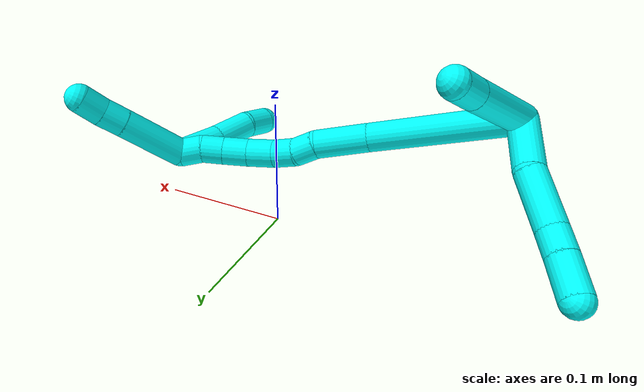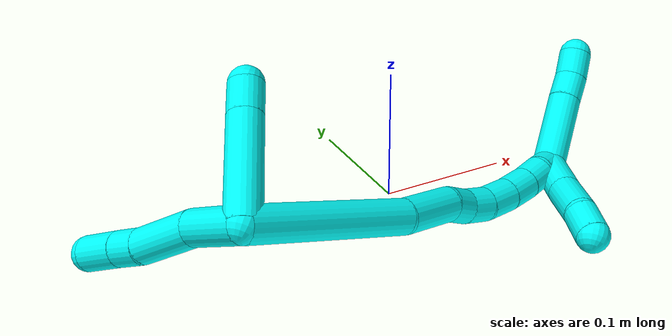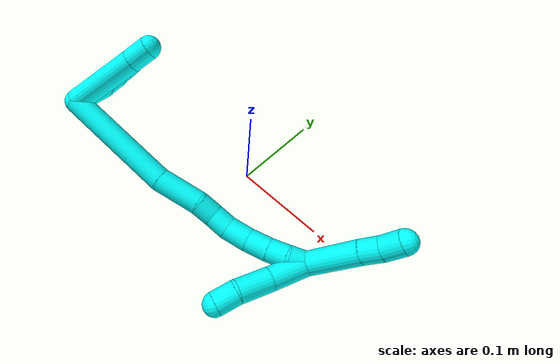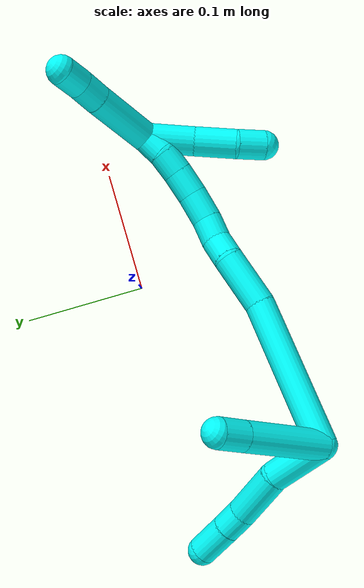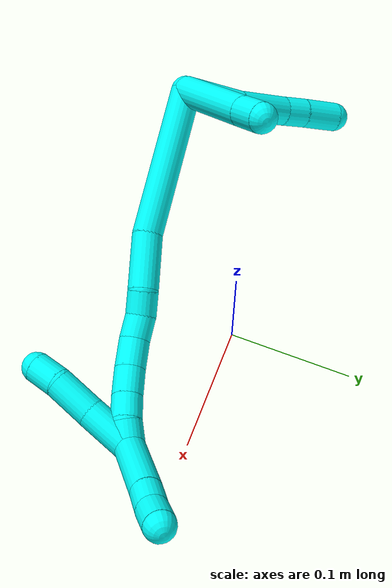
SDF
<sdf version="1.7">
 <world name="default">
  <model name="photoneo_s_sensor">
   <static>1</static>
   <pose>0 0 2 1.57079 1.57079 3.14159</pose>
   <link name="link">
    <inertial><mass>0.1</mass></inertial>
    <sensor name="sensor" type="depth">
     <update_rate>30</update_rate>
     <camera>
      <horizontal_fov>1.22</horizontal_fov>
      <image><width>1920</width><height>1200</height><format>B8G8R8</format></image>
      <clip><near>0.1</near><far>4</far></clip>
      <depth_camera><output>points</output></depth_camera>
     </camera>
     <plugin name="camera_plugin" filename="libgazebo_ros_depth_camera.so">
      <baseline>0.2</baseline>
      <alwaysOn>1</alwaysOn>
      <updateRate>0.0</updateRate>
      <cameraName>camera_ir</cameraName>
      <imageTopicName>/camera/color/image_raw</imageTopicName>
      <cameraInfoTopicName>/camera/color/camera_info</cameraInfoTopicName>
      <depthImageTopicName>/camera/depth/image_raw</depthImageTopicName>
      <depthImageCameraInfoTopicName>/camera/depth/camera_info</depthImageCameraInfoTopicName>
      <pointCloudTopicName>/camera/depth/points</pointCloudTopicName>
      <frameName>fr_optical</frameName>
      <pointCloudCutoff>0.1</pointCloudCutoff>
      <pointCloudCutoffMax>2.0</pointCloudCutoffMax>
      <distortionK1>0</distortionK1>
      <distortionK2>0</distortionK2>
      <distortionK3>0</distortionK3>
      <distortionT1>0</distortionT1>
      <distortionT2>0</distortionT2>
      <CxPrime>0</CxPrime>
      <Cx>0</Cx>
      <Cy>0</Cy>
      <focalLength>0</focalLength>
      <hackBaseline>0</hackBaseline>
     </plugin>
    </sensor>
   </link>
  </model>
  <model name="3">
   <static>0</static>
   <link name="3">
    <collision name="collision-cylinder-e_1_2_8">
     <pose>-0.008526 0.023071 0.001177 -1.51981 -0.353561 0.336315</pose>
     <geometry><cylinder><radius>0.0125</radius><length>0.049248</length></cylinder></geometry>
     <surface>
      <friction><ode><mu>1.16</mu><mu2>1.16</mu2><slip1>0</slip1><slip2>0</slip2></ode></friction>
      <contact><ode><kp>1e+06</kp><kd>1</kd><max_vel>0</max_vel><min_depth>0.001</min_depth></ode></contact>
     </surface>
    </collision>
    <visual name="visual-cylinder-e_1_2_8">
     <pose>-0.008526 0.023071 0.001177 -1.51981 -0.353561 0.336315</pose>
     <geometry><cylinder><radius>0.0125</radius><length>0.049248</length></cylinder></geometry>
     <material><ambient>0.003922 1 0.996078 1</ambient></material>
    </visual>
    <collision name="collision-cylinder-e_2_8_9">
     <pose>-0.026276 0.067347 -0.002959 -1.81634 -0.399303 0.507446</pose>
     <geometry><cylinder><radius>0.0125</radius><length>0.047456</length></cylinder></geometry>
     <surface>
      <friction><ode><mu>1.16</mu><mu2>1.16</mu2><slip1>0</slip1><slip2>0</slip2></ode></friction>
      <contact><ode><kp>1e+06</kp><kd>1</kd><max_vel>0</max_vel><min_depth>0.001</min_depth></ode></contact>
     </surface>
    </collision>
    <visual name="visual-cylinder-e_2_8_9">
     <pose>-0.026276 0.067347 -0.002959 -1.81634 -0.399303 0.507446</pose>
     <geometry><cylinder><radius>0.0125</radius><length>0.047456</length></cylinder></geometry>
     <material><ambient>0.003922 1 0.996078 1</ambient></material>
    </visual>
    <collision name="collision-cylinder-e_3_9_10">
     <pose>-0.040375 0.097964 -0.009121 -1.66066 -0.476204 0.519135</pose>
     <geometry><cylinder><radius>0.0125</radius><length>0.021266</length></cylinder></geometry>
     <surface>
      <friction><ode><mu>1.16</mu><mu2>1.16</mu2><slip1>0</slip1><slip2>0</slip2></ode></friction>
      <contact><ode><kp>1e+06</kp><kd>1</kd><max_vel>0</max_vel><min_depth>0.001</min_depth></ode></contact>
     </surface>
    </collision>
    <visual name="visual-cylinder-e_3_9_10">
     <pose>-0.040375 0.097964 -0.009121 -1.66066 -0.476204 0.519135</pose>
     <geometry><cylinder><radius>0.0125</radius><length>0.021266</length></cylinder></geometry>
     <material><ambient>0.003922 1 0.996078 1</ambient></material>
    </visual>
    <collision name="collision-cylinder-e_4_10_6">
     <pose>-0.052141 0.121769 -0.011323 -1.66461 -0.444818 0.486995</pose>
     <geometry><cylinder><radius>0.0125</radius><length>0.032031</length></cylinder></geometry>
     <surface>
      <friction><ode><mu>1.16</mu><mu2>1.16</mu2><slip1>0</slip1><slip2>0</slip2></ode></friction>
      <contact><ode><kp>1e+06</kp><kd>1</kd><max_vel>0</max_vel><min_depth>0.001</min_depth></ode></contact>
     </surface>
    </collision>
    <visual name="visual-cylinder-e_4_10_6">
     <pose>-0.052141 0.121769 -0.011323 -1.66461 -0.444818 0.486995</pose>
     <geometry><cylinder><radius>0.0125</radius><length>0.032031</length></cylinder></geometry>
     <material><ambient>0.003922 1 0.996078 1</ambient></material>
    </visual>
    <collision name="collision-cylinder-e_1_2_11">
     <pose>-0.009008 0.007621 0.036176 -0.207623 -0.23899 0.025017</pose>
     <geometry><cylinder><radius>0.0125</radius><length>0.076102</length></cylinder></geometry>
     <surface>
      <friction><ode><mu>1.16</mu><mu2>1.16</mu2><slip1>0</slip1><slip2>0</slip2></ode></friction>
      <contact><ode><kp>1e+06</kp><kd>1</kd><max_vel>0</max_vel><min_depth>0.001</min_depth></ode></contact>
     </surface>
    </collision>
    <visual name="visual-cylinder-e_1_2_11">
     <pose>-0.009008 0.007621 0.036176 -0.207623 -0.23899 0.025017</pose>
     <geometry><cylinder><radius>0.0125</radius><length>0.076102</length></cylinder></geometry>
     <material><ambient>0.003922 1 0.996078 1</ambient></material>
    </visual>
    <collision name="collision-cylinder-e_2_11_5">
     <pose>-0.020875 0.017305 0.083768 -0.178808 -0.241692 0.021771</pose>
     <geometry><cylinder><radius>0.0125</radius><length>0.023898</length></cylinder></geometry>
     <surface>
      <friction><ode><mu>1.16</mu><mu2>1.16</mu2><slip1>0</slip1><slip2>0</slip2></ode></friction>
      <contact><ode><kp>1e+06</kp><kd>1</kd><max_vel>0</max_vel><min_depth>0.001</min_depth></ode></contact>
     </surface>
    </collision>
    <visual name="visual-cylinder-e_2_11_5">
     <pose>-0.020875 0.017305 0.083768 -0.178808 -0.241692 0.021771</pose>
     <geometry><cylinder><radius>0.0125</radius><length>0.023898</length></cylinder></geometry>
     <material><ambient>0.003922 1 0.996078 1</ambient></material>
    </visual>
    <collision name="collision-cylinder-e_1_2_12">
     <pose>0.053872 0.011202 0.029936 -0.35805 1.0353 -0.205372</pose>
     <geometry><cylinder><radius>0.0125</radius><length>0.125282</length></cylinder></geometry>
     <surface>
      <friction><ode><mu>1.16</mu><mu2>1.16</mu2><slip1>0</slip1><slip2>0</slip2></ode></friction>
      <contact><ode><kp>1e+06</kp><kd>1</kd><max_vel>0</max_vel><min_depth>0.001</min_depth></ode></contact>
     </surface>
    </collision>
    <visual name="visual-cylinder-e_1_2_12">
     <pose>0.053872 0.011202 0.029936 -0.35805 1.0353 -0.205372</pose>
     <geometry><cylinder><radius>0.0125</radius><length>0.125282</length></cylinder></geometry>
     <material><ambient>0.003922 1 0.996078 1</ambient></material>
    </visual>
    <collision name="collision-cylinder-e_2_12_13">
     <pose>0.125032 0.028827 0.074276 -0.419508 0.831258 -0.187359</pose>
     <geometry><cylinder><radius>0.0125</radius><length>0.046801</length></cylinder></geometry>
     <surface>
      <friction><ode><mu>1.16</mu><mu2>1.16</mu2><slip1>0</slip1><slip2>0</slip2></ode></friction>
      <contact><ode><kp>1e+06</kp><kd>1</kd><max_vel>0</max_vel><min_depth>0.001</min_depth></ode></contact>
     </surface>
    </collision>
    <visual name="visual-cylinder-e_2_12_13">
     <pose>0.125032 0.028827 0.074276 -0.419508 0.831258 -0.187359</pose>
     <geometry><cylinder><radius>0.0125</radius><length>0.046801</length></cylinder></geometry>
     <material><ambient>0.003922 1 0.996078 1</ambient></material>
    </visual>
    <collision name="collision-cylinder-e_3_13_14">
     <pose>0.150617 0.039282 0.092661 -0.791697 0.971603 -0.434357</pose>
     <geometry><cylinder><radius>0.0125</radius><length>0.020096</length></cylinder></geometry>
     <surface>
      <friction><ode><mu>1.16</mu><mu2>1.16</mu2><slip1>0</slip1><slip2>0</slip2></ode></friction>
      <contact><ode><kp>1e+06</kp><kd>1</kd><max_vel>0</max_vel><min_depth>0.001</min_depth></ode></contact>
     </surface>
    </collision>
    <visual name="visual-cylinder-e_3_13_14">
     <pose>0.150617 0.039282 0.092661 -0.791697 0.971603 -0.434357</pose>
     <geometry><cylinder><radius>0.0125</radius><length>0.020096</length></cylinder></geometry>
     <material><ambient>0.003922 1 0.996078 1</ambient></material>
    </visual>
    <collision name="collision-cylinder-e_4_14_15">
     <pose>0.167563 0.044991 0.10199 -0.303831 0.99578 -0.166052</pose>
     <geometry><cylinder><radius>0.0125</radius><length>0.02061</length></cylinder></geometry>
     <surface>
      <friction><ode><mu>1.16</mu><mu2>1.16</mu2><slip1>0</slip1><slip2>0</slip2></ode></friction>
      <contact><ode><kp>1e+06</kp><kd>1</kd><max_vel>0</max_vel><min_depth>0.001</min_depth></ode></contact>
     </surface>
    </collision>
    <visual name="visual-cylinder-e_4_14_15">
     <pose>0.167563 0.044991 0.10199 -0.303831 0.99578 -0.166052</pose>
     <geometry><cylinder><radius>0.0125</radius><length>0.02061</length></cylinder></geometry>
     <material><ambient>0.003922 1 0.996078 1</ambient></material>
    </visual>
    <collision name="collision-cylinder-e_5_15_16">
     <pose>0.184874 0.048297 0.115718 -0.191985 0.792778 -0.080558</pose>
     <geometry><cylinder><radius>0.0125</radius><length>0.024326</length></cylinder></geometry>
     <surface>
      <friction><ode><mu>1.16</mu><mu2>1.16</mu2><slip1>0</slip1><slip2>0</slip2></ode></friction>
      <contact><ode><kp>1e+06</kp><kd>1</kd><max_vel>0</max_vel><min_depth>0.001</min_depth></ode></contact>
     </surface>
    </collision>
    <visual name="visual-cylinder-e_5_15_16">
     <pose>0.184874 0.048297 0.115718 -0.191985 0.792778 -0.080558</pose>
     <geometry><cylinder><radius>0.0125</radius><length>0.024326</length></cylinder></geometry>
     <material><ambient>0.003922 1 0.996078 1</ambient></material>
    </visual>
    <collision name="collision-cylinder-e_6_16_17">
     <pose>0.200846 0.051408 0.132706 -0.170564 0.696678 -0.06207</pose>
     <geometry><cylinder><radius>0.0125</radius><length>0.022777</length></cylinder></geometry>
     <surface>
      <friction><ode><mu>1.16</mu><mu2>1.16</mu2><slip1>0</slip1><slip2>0</slip2></ode></friction>
      <contact><ode><kp>1e+06</kp><kd>1</kd><max_vel>0</max_vel><min_depth>0.001</min_depth></ode></contact>
     </surface>
    </collision>
    <visual name="visual-cylinder-e_6_16_17">
     <pose>0.200846 0.051408 0.132706 -0.170564 0.696678 -0.06207</pose>
     <geometry><cylinder><radius>0.0125</radius><length>0.022777</length></cylinder></geometry>
     <material><ambient>0.003922 1 0.996078 1</ambient></material>
    </visual>
    <collision name="collision-cylinder-e_7_17_18">
     <pose>0.213894 0.054304 0.149387 -0.173266 0.610978 -0.054765</pose>
     <geometry><cylinder><radius>0.0125</radius><length>0.020013</length></cylinder></geometry>
     <surface>
      <friction><ode><mu>1.16</mu><mu2>1.16</mu2><slip1>0</slip1><slip2>0</slip2></ode></friction>
      <contact><ode><kp>1e+06</kp><kd>1</kd><max_vel>0</max_vel><min_depth>0.001</min_depth></ode></contact>
     </surface>
    </collision>
    <visual name="visual-cylinder-e_7_17_18">
     <pose>0.213894 0.054304 0.149387 -0.173266 0.610978 -0.054765</pose>
     <geometry><cylinder><radius>0.0125</radius><length>0.020013</length></cylinder></geometry>
     <material><ambient>0.003922 1 0.996078 1</ambient></material>
    </visual>
    <collision name="collision-cylinder-e_8_18_1">
     <pose>0.225566 0.059656 0.16455 -0.507069 0.631451 -0.168876</pose>
     <geometry><cylinder><radius>0.0125</radius><length>0.020096</length></cylinder></geometry>
     <surface>
      <friction><ode><mu>1.16</mu><mu2>1.16</mu2><slip1>0</slip1><slip2>0</slip2></ode></friction>
      <contact><ode><kp>1e+06</kp><kd>1</kd><max_vel>0</max_vel><min_depth>0.001</min_depth></ode></contact>
     </surface>
    </collision>
    <visual name="visual-cylinder-e_8_18_1">
     <pose>0.225566 0.059656 0.16455 -0.507069 0.631451 -0.168876</pose>
     <geometry><cylinder><radius>0.0125</radius><length>0.020096</length></cylinder></geometry>
     <material><ambient>0.003922 1 0.996078 1</ambient></material>
    </visual>
    <collision name="collision-cylinder-e_1_1_19">
     <pose>0.230913 0.061346 0.200702 0.077185 -0.020023 -0.000773</pose>
     <geometry><cylinder><radius>0.0125</radius><length>0.058308</length></cylinder></geometry>
     <surface>
      <friction><ode><mu>1.16</mu><mu2>1.16</mu2><slip1>0</slip1><slip2>0</slip2></ode></friction>
      <contact><ode><kp>1e+06</kp><kd>1</kd><max_vel>0</max_vel><min_depth>0.001</min_depth></ode></contact>
     </surface>
    </collision>
    <visual name="visual-cylinder-e_1_1_19">
     <pose>0.230913 0.061346 0.200702 0.077185 -0.020023 -0.000773</pose>
     <geometry><cylinder><radius>0.0125</radius><length>0.058308</length></cylinder></geometry>
     <material><ambient>0.003922 1 0.996078 1</ambient></material>
    </visual>
    <collision name="collision-cylinder-e_2_19_20">
     <pose>0.230584 0.058298 0.239939 0.07857 0.024901 0.000979</pose>
     <geometry><cylinder><radius>0.0125</radius><length>0.020421</length></cylinder></geometry>
     <surface>
      <friction><ode><mu>1.16</mu><mu2>1.16</mu2><slip1>0</slip1><slip2>0</slip2></ode></friction>
      <contact><ode><kp>1e+06</kp><kd>1</kd><max_vel>0</max_vel><min_depth>0.001</min_depth></ode></contact>
     </surface>
    </collision>
    <visual name="visual-cylinder-e_2_19_20">
     <pose>0.230584 0.058298 0.239939 0.07857 0.024901 0.000979</pose>
     <geometry><cylinder><radius>0.0125</radius><length>0.020421</length></cylinder></geometry>
     <material><ambient>0.003922 1 0.996078 1</ambient></material>
    </visual>
    <collision name="collision-cylinder-e_3_20_4">
     <pose>0.229744 0.056177 0.260611 0.12504 -0.103092 -0.006459</pose>
     <geometry><cylinder><radius>0.0125</radius><length>0.021271</length></cylinder></geometry>
     <surface>
      <friction><ode><mu>1.16</mu><mu2>1.16</mu2><slip1>0</slip1><slip2>0</slip2></ode></friction>
      <contact><ode><kp>1e+06</kp><kd>1</kd><max_vel>0</max_vel><min_depth>0.001</min_depth></ode></contact>
     </surface>
    </collision>
    <visual name="visual-cylinder-e_3_20_4">
     <pose>0.229744 0.056177 0.260611 0.12504 -0.103092 -0.006459</pose>
     <geometry><cylinder><radius>0.0125</radius><length>0.021271</length></cylinder></geometry>
     <material><ambient>0.003922 1 0.996078 1</ambient></material>
    </visual>
    <collision name="collision-cylinder-e_1_1_21">
     <pose>0.232639 0.050063 0.156418 2.41493 0.055991 0.147036</pose>
     <geometry><cylinder><radius>0.0125</radius><length>0.040798</length></cylinder></geometry>
     <surface>
      <friction><ode><mu>1.16</mu><mu2>1.16</mu2><slip1>0</slip1><slip2>0</slip2></ode></friction>
      <contact><ode><kp>1e+06</kp><kd>1</kd><max_vel>0</max_vel><min_depth>0.001</min_depth></ode></contact>
     </surface>
    </collision>
    <visual name="visual-cylinder-e_1_1_21">
     <pose>0.232639 0.050063 0.156418 2.41493 0.055991 0.147036</pose>
     <geometry><cylinder><radius>0.0125</radius><length>0.040798</length></cylinder></geometry>
     <material><ambient>0.003922 1 0.996078 1</ambient></material>
    </visual>
    <collision name="collision-cylinder-e_2_21_22">
     <pose>0.233985 0.023839 0.128725 2.34737 0.01151 0.027443</pose>
     <geometry><cylinder><radius>0.0125</radius><length>0.035589</length></cylinder></geometry>
     <surface>
      <friction><ode><mu>1.16</mu><mu2>1.16</mu2><slip1>0</slip1><slip2>0</slip2></ode></friction>
      <contact><ode><kp>1e+06</kp><kd>1</kd><max_vel>0</max_vel><min_depth>0.001</min_depth></ode></contact>
     </surface>
    </collision>
    <visual name="visual-cylinder-e_2_21_22">
     <pose>0.233985 0.023839 0.128725 2.34737 0.01151 0.027443</pose>
     <geometry><cylinder><radius>0.0125</radius><length>0.035589</length></cylinder></geometry>
     <material><ambient>0.003922 1 0.996078 1</ambient></material>
    </visual>
    <collision name="collision-cylinder-e_3_22_3">
     <pose>0.236423 0.004533 0.106733 2.53454 0.190268 0.591458</pose>
     <geometry><cylinder><radius>0.0125</radius><length>0.023613</length></cylinder></geometry>
     <surface>
      <friction><ode><mu>1.16</mu><mu2>1.16</mu2><slip1>0</slip1><slip2>0</slip2></ode></friction>
      <contact><ode><kp>1e+06</kp><kd>1</kd><max_vel>0</max_vel><min_depth>0.001</min_depth></ode></contact>
     </surface>
    </collision>
    <visual name="visual-cylinder-e_3_22_3">
     <pose>0.236423 0.004533 0.106733 2.53454 0.190268 0.591458</pose>
     <geometry><cylinder><radius>0.0125</radius><length>0.023613</length></cylinder></geometry>
     <material><ambient>0.003922 1 0.996078 1</ambient></material>
    </visual>
    <collision name="collision-sphere-3">
     <pose>0.238656 -0.00208 0.097211 0 -0 0</pose>
     <geometry><sphere><radius>0.0125</radius></sphere></geometry>
     <surface>
      <friction><ode><mu>1.16</mu><mu2>1.16</mu2><slip1>0</slip1><slip2>0</slip2></ode></friction>
      <contact><ode><kp>1e+06</kp><kd>1</kd><max_vel>0</max_vel><min_depth>0.001</min_depth></ode></contact>
     </surface>
    </collision>
    <visual name="visual-sphere-3">
     <pose>0.238656 -0.00208 0.097211 0 -0 0</pose>
     <geometry><sphere><radius>0.0125</radius></sphere></geometry>
     <material><ambient>0.003922 1 0.996078 1</ambient></material>
    </visual>
    <collision name="collision-sphere-22">
     <pose>0.23419 0.011146 0.116255 0 -0 0</pose>
     <geometry><sphere><radius>0.0125</radius></sphere></geometry>
     <surface>
      <friction><ode><mu>1.16</mu><mu2>1.16</mu2><slip1>0</slip1><slip2>0</slip2></ode></friction>
      <contact><ode><kp>1e+06</kp><kd>1</kd><max_vel>0</max_vel><min_depth>0.001</min_depth></ode></contact>
     </surface>
    </collision>
    <visual name="visual-sphere-22">
     <pose>0.23419 0.011146 0.116255 0 -0 0</pose>
     <geometry><sphere><radius>0.0125</radius></sphere></geometry>
     <material><ambient>0.003922 1 0.996078 1</ambient></material>
    </visual>
    <collision name="collision-sphere-21">
     <pose>0.23378 0.036531 0.141196 0 -0 0</pose>
     <geometry><sphere><radius>0.0125</radius></sphere></geometry>
     <surface>
      <friction><ode><mu>1.16</mu><mu2>1.16</mu2><slip1>0</slip1><slip2>0</slip2></ode></friction>
      <contact><ode><kp>1e+06</kp><kd>1</kd><max_vel>0</max_vel><min_depth>0.001</min_depth></ode></contact>
     </surface>
    </collision>
    <visual name="visual-sphere-21">
     <pose>0.23378 0.036531 0.141196 0 -0 0</pose>
     <geometry><sphere><radius>0.0125</radius></sphere></geometry>
     <material><ambient>0.003922 1 0.996078 1</ambient></material>
    </visual>
    <collision name="collision-sphere-4">
     <pose>0.228649 0.054858 0.271108 0 -0 0</pose>
     <geometry><sphere><radius>0.0125</radius></sphere></geometry>
     <surface>
      <friction><ode><mu>1.16</mu><mu2>1.16</mu2><slip1>0</slip1><slip2>0</slip2></ode></friction>
      <contact><ode><kp>1e+06</kp><kd>1</kd><max_vel>0</max_vel><min_depth>0.001</min_depth></ode></contact>
     </surface>
    </collision>
    <visual name="visual-sphere-4">
     <pose>0.228649 0.054858 0.271108 0 -0 0</pose>
     <geometry><sphere><radius>0.0125</radius></sphere></geometry>
     <material><ambient>0.003922 1 0.996078 1</ambient></material>
    </visual>
    <collision name="collision-sphere-20">
     <pose>0.230838 0.057497 0.250115 0 -0 0</pose>
     <geometry><sphere><radius>0.0125</radius></sphere></geometry>
     <surface>
      <friction><ode><mu>1.16</mu><mu2>1.16</mu2><slip1>0</slip1><slip2>0</slip2></ode></friction>
      <contact><ode><kp>1e+06</kp><kd>1</kd><max_vel>0</max_vel><min_depth>0.001</min_depth></ode></contact>
     </surface>
    </collision>
    <visual name="visual-sphere-20">
     <pose>0.230838 0.057497 0.250115 0 -0 0</pose>
     <geometry><sphere><radius>0.0125</radius></sphere></geometry>
     <material><ambient>0.003922 1 0.996078 1</ambient></material>
    </visual>
    <collision name="collision-sphere-11">
     <pose>-0.018015 0.015241 0.072351 0 -0 0</pose>
     <geometry><sphere><radius>0.0125</radius></sphere></geometry>
     <surface>
      <friction><ode><mu>1.16</mu><mu2>1.16</mu2><slip1>0</slip1><slip2>0</slip2></ode></friction>
      <contact><ode><kp>1e+06</kp><kd>1</kd><max_vel>0</max_vel><min_depth>0.001</min_depth></ode></contact>
     </surface>
    </collision>
    <visual name="visual-sphere-11">
     <pose>-0.018015 0.015241 0.072351 0 -0 0</pose>
     <geometry><sphere><radius>0.0125</radius></sphere></geometry>
     <material><ambient>0.003922 1 0.996078 1</ambient></material>
    </visual>
    <collision name="collision-sphere-6">
     <pose>-0.059032 0.136163 -0.012678 0 -0 0</pose>
     <geometry><sphere><radius>0.0125</radius></sphere></geometry>
     <surface>
      <friction><ode><mu>1.16</mu><mu2>1.16</mu2><slip1>0</slip1><slip2>0</slip2></ode></friction>
      <contact><ode><kp>1e+06</kp><kd>1</kd><max_vel>0</max_vel><min_depth>0.001</min_depth></ode></contact>
     </surface>
    </collision>
    <visual name="visual-sphere-6">
     <pose>-0.059032 0.136163 -0.012678 0 -0 0</pose>
     <geometry><sphere><radius>0.0125</radius></sphere></geometry>
     <material><ambient>0.003922 1 0.996078 1</ambient></material>
    </visual>
    <collision name="collision-sphere-10">
     <pose>-0.04525 0.107376 -0.009969 0 -0 0</pose>
     <geometry><sphere><radius>0.0125</radius></sphere></geometry>
     <surface>
      <friction><ode><mu>1.16</mu><mu2>1.16</mu2><slip1>0</slip1><slip2>0</slip2></ode></friction>
      <contact><ode><kp>1e+06</kp><kd>1</kd><max_vel>0</max_vel><min_depth>0.001</min_depth></ode></contact>
     </surface>
    </collision>
    <visual name="visual-sphere-10">
     <pose>-0.04525 0.107376 -0.009969 0 -0 0</pose>
     <geometry><sphere><radius>0.0125</radius></sphere></geometry>
     <material><ambient>0.003922 1 0.996078 1</ambient></material>
    </visual>
    <collision name="collision-sphere-9">
     <pose>-0.035501 0.088553 -0.008273 0 -0 0</pose>
     <geometry><sphere><radius>0.0125</radius></sphere></geometry>
     <surface>
      <friction><ode><mu>1.16</mu><mu2>1.16</mu2><slip1>0</slip1><slip2>0</slip2></ode></friction>
      <contact><ode><kp>1e+06</kp><kd>1</kd><max_vel>0</max_vel><min_depth>0.001</min_depth></ode></contact>
     </surface>
    </collision>
    <visual name="visual-sphere-9">
     <pose>-0.035501 0.088553 -0.008273 0 -0 0</pose>
     <geometry><sphere><radius>0.0125</radius></sphere></geometry>
     <material><ambient>0.003922 1 0.996078 1</ambient></material>
    </visual>
    <collision name="collision-sphere-2">
     <geometry><sphere><radius>0.0125</radius></sphere></geometry>
     <surface>
      <friction><ode><mu>1.16</mu><mu2>1.16</mu2><slip1>0</slip1><slip2>0</slip2></ode></friction>
      <contact><ode><kp>1e+06</kp><kd>1</kd><max_vel>0</max_vel><min_depth>0.001</min_depth></ode></contact>
     </surface>
    </collision>
    <visual name="visual-sphere-2">
     <geometry><sphere><radius>0.0125</radius></sphere></geometry>
     <material><ambient>0.003922 1 0.996078 1</ambient></material>
    </visual>
    <collision name="collision-sphere-19">
     <pose>0.23033 0.059099 0.229763 0 -0 0</pose>
     <geometry><sphere><radius>0.0125</radius></sphere></geometry>
     <surface>
      <friction><ode><mu>1.16</mu><mu2>1.16</mu2><slip1>0</slip1><slip2>0</slip2></ode></friction>
      <contact><ode><kp>1e+06</kp><kd>1</kd><max_vel>0</max_vel><min_depth>0.001</min_depth></ode></contact>
     </surface>
    </collision>
    <visual name="visual-sphere-19">
     <pose>0.23033 0.059099 0.229763 0 -0 0</pose>
     <geometry><sphere><radius>0.0125</radius></sphere></geometry>
     <material><ambient>0.003922 1 0.996078 1</ambient></material>
    </visual>
    <collision name="collision-sphere-8">
     <pose>-0.017052 0.046141 0.002355 0 -0 0</pose>
     <geometry><sphere><radius>0.0125</radius></sphere></geometry>
     <surface>
      <friction><ode><mu>1.16</mu><mu2>1.16</mu2><slip1>0</slip1><slip2>0</slip2></ode></friction>
      <contact><ode><kp>1e+06</kp><kd>1</kd><max_vel>0</max_vel><min_depth>0.001</min_depth></ode></contact>
     </surface>
    </collision>
    <visual name="visual-sphere-8">
     <pose>-0.017052 0.046141 0.002355 0 -0 0</pose>
     <geometry><sphere><radius>0.0125</radius></sphere></geometry>
     <material><ambient>0.003922 1 0.996078 1</ambient></material>
    </visual>
    <collision name="collision-sphere-5">
     <pose>-0.023735 0.019368 0.095185 0 -0 0</pose>
     <geometry><sphere><radius>0.0125</radius></sphere></geometry>
     <surface>
      <friction><ode><mu>1.16</mu><mu2>1.16</mu2><slip1>0</slip1><slip2>0</slip2></ode></friction>
      <contact><ode><kp>1e+06</kp><kd>1</kd><max_vel>0</max_vel><min_depth>0.001</min_depth></ode></contact>
     </surface>
    </collision>
    <visual name="visual-sphere-5">
     <pose>-0.023735 0.019368 0.095185 0 -0 0</pose>
     <geometry><sphere><radius>0.0125</radius></sphere></geometry>
     <material><ambient>0.003922 1 0.996078 1</ambient></material>
    </visual>
    <collision name="collision-sphere-12">
     <pose>0.107745 0.022403 0.059873 0 -0 0</pose>
     <geometry><sphere><radius>0.0125</radius></sphere></geometry>
     <surface>
      <friction><ode><mu>1.16</mu><mu2>1.16</mu2><slip1>0</slip1><slip2>0</slip2></ode></friction>
      <contact><ode><kp>1e+06</kp><kd>1</kd><max_vel>0</max_vel><min_depth>0.001</min_depth></ode></contact>
     </surface>
    </collision>
    <visual name="visual-sphere-12">
     <pose>0.107745 0.022403 0.059873 0 -0 0</pose>
     <geometry><sphere><radius>0.0125</radius></sphere></geometry>
     <material><ambient>0.003922 1 0.996078 1</ambient></material>
    </visual>
    <collision name="collision-sphere-13">
     <pose>0.14232 0.03525 0.088679 0 -0 0</pose>
     <geometry><sphere><radius>0.0125</radius></sphere></geometry>
     <surface>
      <friction><ode><mu>1.16</mu><mu2>1.16</mu2><slip1>0</slip1><slip2>0</slip2></ode></friction>
      <contact><ode><kp>1e+06</kp><kd>1</kd><max_vel>0</max_vel><min_depth>0.001</min_depth></ode></contact>
     </surface>
    </collision>
    <visual name="visual-sphere-13">
     <pose>0.14232 0.03525 0.088679 0 -0 0</pose>
     <geometry><sphere><radius>0.0125</radius></sphere></geometry>
     <material><ambient>0.003922 1 0.996078 1</ambient></material>
    </visual>
    <collision name="collision-sphere-14">
     <pose>0.158915 0.043315 0.096643 0 -0 0</pose>
     <geometry><sphere><radius>0.0125</radius></sphere></geometry>
     <surface>
      <friction><ode><mu>1.16</mu><mu2>1.16</mu2><slip1>0</slip1><slip2>0</slip2></ode></friction>
      <contact><ode><kp>1e+06</kp><kd>1</kd><max_vel>0</max_vel><min_depth>0.001</min_depth></ode></contact>
     </surface>
    </collision>
    <visual name="visual-sphere-14">
     <pose>0.158915 0.043315 0.096643 0 -0 0</pose>
     <geometry><sphere><radius>0.0125</radius></sphere></geometry>
     <material><ambient>0.003922 1 0.996078 1</ambient></material>
    </visual>
    <collision name="collision-sphere-15">
     <pose>0.176211 0.046668 0.107338 0 -0 0</pose>
     <geometry><sphere><radius>0.0125</radius></sphere></geometry>
     <surface>
      <friction><ode><mu>1.16</mu><mu2>1.16</mu2><slip1>0</slip1><slip2>0</slip2></ode></friction>
      <contact><ode><kp>1e+06</kp><kd>1</kd><max_vel>0</max_vel><min_depth>0.001</min_depth></ode></contact>
     </surface>
    </collision>
    <visual name="visual-sphere-15">
     <pose>0.176211 0.046668 0.107338 0 -0 0</pose>
     <geometry><sphere><radius>0.0125</radius></sphere></geometry>
     <material><ambient>0.003922 1 0.996078 1</ambient></material>
    </visual>
    <collision name="collision-sphere-16">
     <pose>0.193538 0.049926 0.124098 0 -0 0</pose>
     <geometry><sphere><radius>0.0125</radius></sphere></geometry>
     <surface>
      <friction><ode><mu>1.16</mu><mu2>1.16</mu2><slip1>0</slip1><slip2>0</slip2></ode></friction>
      <contact><ode><kp>1e+06</kp><kd>1</kd><max_vel>0</max_vel><min_depth>0.001</min_depth></ode></contact>
     </surface>
    </collision>
    <visual name="visual-sphere-16">
     <pose>0.193538 0.049926 0.124098 0 -0 0</pose>
     <geometry><sphere><radius>0.0125</radius></sphere></geometry>
     <material><ambient>0.003922 1 0.996078 1</ambient></material>
    </visual>
    <collision name="collision-sphere-17">
     <pose>0.208153 0.052891 0.141314 0 -0 0</pose>
     <geometry><sphere><radius>0.0125</radius></sphere></geometry>
     <surface>
      <friction><ode><mu>1.16</mu><mu2>1.16</mu2><slip1>0</slip1><slip2>0</slip2></ode></friction>
      <contact><ode><kp>1e+06</kp><kd>1</kd><max_vel>0</max_vel><min_depth>0.001</min_depth></ode></contact>
     </surface>
    </collision>
    <visual name="visual-sphere-17">
     <pose>0.208153 0.052891 0.141314 0 -0 0</pose>
     <geometry><sphere><radius>0.0125</radius></sphere></geometry>
     <material><ambient>0.003922 1 0.996078 1</ambient></material>
    </visual>
    <collision name="collision-sphere-18">
     <pose>0.219634 0.055717 0.157461 0 -0 0</pose>
     <geometry><sphere><radius>0.0125</radius></sphere></geometry>
     <surface>
      <friction><ode><mu>1.16</mu><mu2>1.16</mu2><slip1>0</slip1><slip2>0</slip2></ode></friction>
      <contact><ode><kp>1e+06</kp><kd>1</kd><max_vel>0</max_vel><min_depth>0.001</min_depth></ode></contact>
     </surface>
    </collision>
    <visual name="visual-sphere-18">
     <pose>0.219634 0.055717 0.157461 0 -0 0</pose>
     <geometry><sphere><radius>0.0125</radius></sphere></geometry>
     <material><ambient>0.003922 1 0.996078 1</ambient></material>
    </visual>
    <collision name="collision-sphere-1">
     <pose>0.231497 0.063594 0.17164 0 -0 0</pose>
     <geometry><sphere><radius>0.0125</radius></sphere></geometry>
     <surface>
      <friction><ode><mu>1.16</mu><mu2>1.16</mu2><slip1>0</slip1><slip2>0</slip2></ode></friction>
      <contact><ode><kp>1e+06</kp><kd>1</kd><max_vel>0</max_vel><min_depth>0.001</min_depth></ode></contact>
     </surface>
    </collision>
    <visual name="visual-sphere-1">
     <pose>0.231497 0.063594 0.17164 0 -0 0</pose>
     <geometry><sphere><radius>0.0125</radius></sphere></geometry>
     <material><ambient>0.003922 1 0.996078 1</ambient></material>
    </visual>
    <inertial>
     <pose>0.104063 0.03916 0.084093 0 -0 0</pose>
     <mass>0.75</mass>
     <inertia>
      <ixx>0.000204</ixx>
      <ixy>0</ixy>
      <ixz>0</ixz>
      <iyy>0.000245</iyy>
      <iyz>0</iyz>
      <izz>-0.000175</izz>
     </inertia>
    </inertial>
   </link>
   <pose>-0.159981 -0.102535 0.078551 -0.879223 0.535534 -0.422548</pose>
  </model>
 </world>
</sdf>
